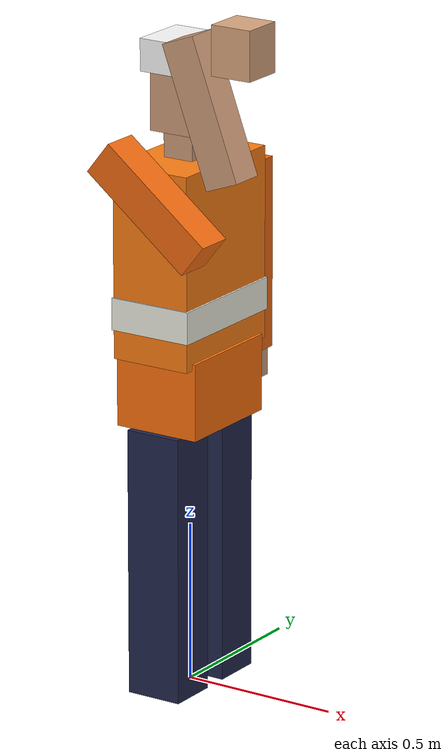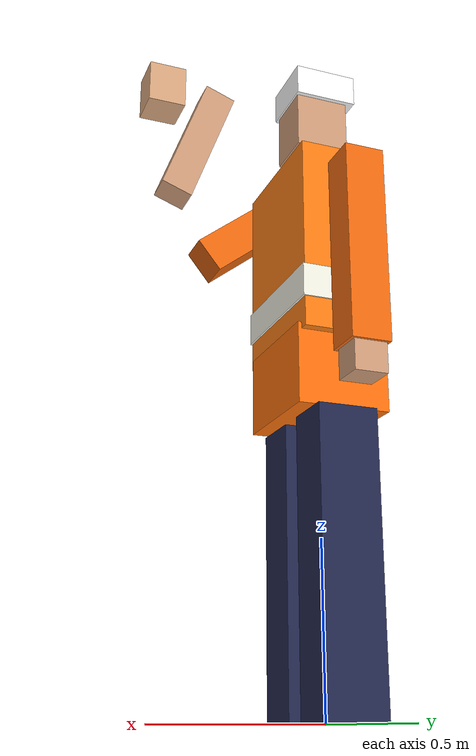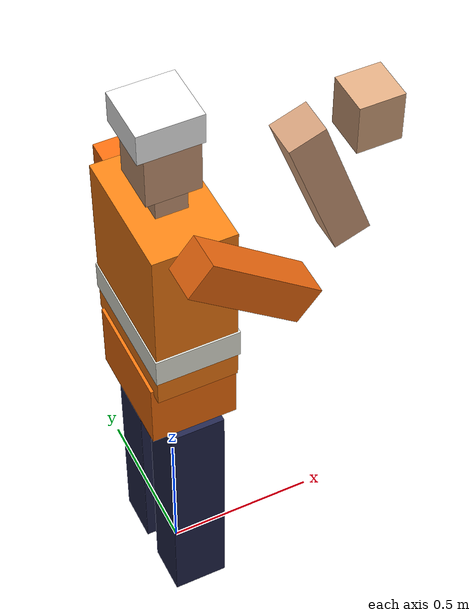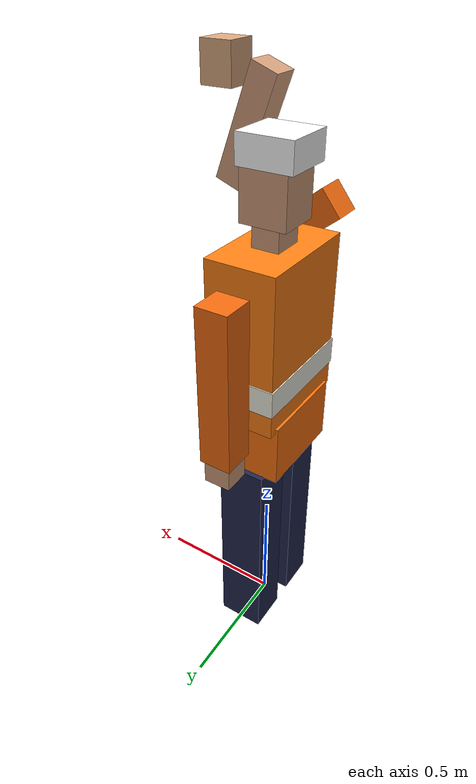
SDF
<?xml version="1.0"?>
<sdf version="1.7">
  <model name="victim">
    <static>true</static>
    <link name="body">

      <visual name="leg_l">
        <pose>0 0.12 0.42 0 0 0</pose>
        <geometry><box><size>0.18 0.16 0.84</size></box></geometry>
        <material><ambient>0.06 0.07 0.14 1</ambient><diffuse>0.13 0.15 0.30 1</diffuse></material>
      </visual>
      <visual name="leg_r">
        <pose>0 -0.12 0.42 0 0 0</pose>
        <geometry><box><size>0.18 0.16 0.84</size></box></geometry>
        <material><ambient>0.06 0.07 0.14 1</ambient><diffuse>0.13 0.15 0.30 1</diffuse></material>
      </visual>

      <visual name="pelvis">
        <pose>0 0 0.96 0 0 0</pose>
        <geometry><box><size>0.28 0.36 0.24</size></box></geometry>
        <material>
          <ambient>0.9 0.4 0.05 1</ambient><diffuse>1.0 0.45 0.05 1</diffuse>
          <emissive>0.55 0.22 0.02 1</emissive>
        </material>
      </visual>
      <visual name="torso">
        <pose>0 0 1.36 0 0 0</pose>
        <geometry><box><size>0.26 0.42 0.60</size></box></geometry>
        <material>
          <ambient>1.0 0.45 0.05 1</ambient><diffuse>1.0 0.5 0.08 1</diffuse>
          <emissive>0.7 0.30 0.03 1</emissive>
        </material>
      </visual>
      <!-- reflective band -->
      <visual name="hiviz_band">
        <pose>0.001 0 1.20 0 0 0</pose>
        <geometry><box><size>0.27 0.43 0.10</size></box></geometry>
        <material>
          <ambient>0.9 0.9 0.85 1</ambient><diffuse>0.95 0.95 0.9 1</diffuse>
          <emissive>0.8 0.8 0.75 1</emissive>
        </material>
      </visual>

      <visual name="neck">
        <pose>0 0 1.70 0 0 0</pose>
        <geometry><box><size>0.10 0.12 0.10</size></box></geometry>
        <material><ambient>0.55 0.4 0.3 1</ambient><diffuse>0.82 0.62 0.48 1</diffuse>
          <emissive>0.3 0.22 0.16 1</emissive></material>
      </visual>
      <visual name="head">
        <pose>0 0 1.84 0 0 0</pose>
        <geometry><box><size>0.17 0.16 0.20</size></box></geometry>
        <material><ambient>0.55 0.4 0.3 1</ambient><diffuse>0.82 0.62 0.48 1</diffuse>
          <emissive>0.32 0.24 0.18 1</emissive></material>
      </visual>
      <!-- white hard hat -->
      <visual name="hardhat">
        <pose>-0.01 0 1.97 0 0 0</pose>
        <geometry><box><size>0.20 0.19 0.10</size></box></geometry>
        <material>
          <ambient>0.95 0.95 0.95 1</ambient><diffuse>1.0 1.0 1.0 1</diffuse>
          <emissive>0.75 0.75 0.75 1</emissive>
        </material>
      </visual>

      <visual name="arm_l">
        <pose>0 0.30 1.28 0 0 0</pose>
        <geometry><box><size>0.12 0.12 0.60</size></box></geometry>
        <material><ambient>0.9 0.4 0.05 1</ambient><diffuse>0.95 0.42 0.06 1</diffuse>
          <emissive>0.55 0.22 0.02 1</emissive></material>
      </visual>
      <visual name="hand_l">
        <pose>0 0.30 0.95 0 0 0</pose>
        <geometry><box><size>0.10 0.10 0.12</size></box></geometry>
        <material><ambient>0.55 0.4 0.3 1</ambient><diffuse>0.82 0.62 0.48 1</diffuse>
          <emissive>0.3 0.22 0.16 1</emissive></material>
      </visual>

      <visual name="arm_r_upper">
        <pose>0.10 -0.32 1.60 0 -0.9 0</pose>
        <geometry><box><size>0.12 0.12 0.42</size></box></geometry>
        <material><ambient>0.9 0.4 0.05 1</ambient><diffuse>0.95 0.42 0.06 1</diffuse>
          <emissive>0.55 0.22 0.02 1</emissive></material>
      </visual>
      <visual name="arm_r_fore">
        <pose>0.30 -0.34 1.92 0 -0.35 0</pose>
        <geometry><box><size>0.11 0.11 0.44</size></box></geometry>
        <material><ambient>0.55 0.4 0.3 1</ambient><diffuse>0.82 0.62 0.48 1</diffuse>
          <emissive>0.32 0.24 0.18 1</emissive></material>
      </visual>
      <visual name="hand_r">
        <pose>0.42 -0.35 2.12 0 0 0</pose>
        <geometry><box><size>0.13 0.13 0.15</size></box></geometry>
        <material><ambient>0.6 0.44 0.33 1</ambient><diffuse>0.86 0.66 0.5 1</diffuse>
          <emissive>0.34 0.26 0.2 1</emissive></material>
      </visual>

    </link>
  </model>
</sdf>
